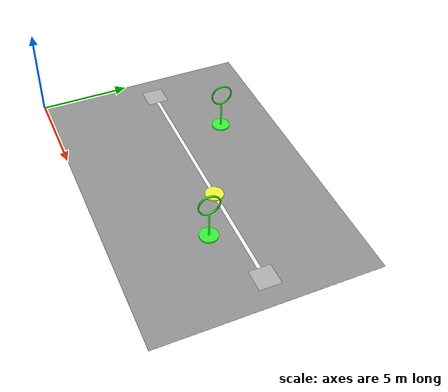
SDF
<sdf version="1.7">
  <world name="drone_delivery_field">

    <!-- Add sunlight to the world -->
    <include>
      <uri>model://sun</uri>
    </include>

    <!-- Main green field (18m x 12m) -->
    <model name="main_field">
      <static>true</static>
      <pose>9 6 0.005 0 0 0</pose>
      <link name="link">
        <collision name="collision">
          <geometry><box><size>18 12 0.01</size></box></geometry>
        </collision>
        <visual name="visual">
          <geometry><box><size>18 12 0.01</size></box></geometry>
          <material>
            <script>
              <uri>file://media/materials/scripts/gazebo.material</uri>
              <name>Gazebo/Gray</name>
            </script>
          </material>
        </visual>
      </link>
    </model>

    <!-- Central white path line (horizontal) -->
    <model name="central_line">
      <static>true</static>
      <!-- Positioned midway -->
      <pose>9 6.4 0.01 0 0 0</pose>
      <link name="link">
        <collision name="collision">
          <!-- Box dimensions: length (X), width (Y), height (Z) -->
          <geometry><box><size>14.5 0.2 0.02</size></box></geometry>
        </collision>
        <visual name="visual">
          <!-- Box dimensions: length (X), width (Y), height (Z) -->
          <geometry><box><size>14.5 0.2 0.02</size></box></geometry>
          <material>
            <!-- White line -->
            <ambient>1 1 1 1</ambient>
            <diffuse>1 1 1 1</diffuse>
          </material>
        </visual>
      </link>
    </model>

    <!-- Home landing pads (aligned along X axis) -->
    <include>
      <uri>model://home_marker</uri>
      <name>home_left</name>
      <pose>1.6 6.4 0.05 0 0 -1.57079633</pose>
    </include>

    <include>
      <uri>model://home_marker</uri>
      <name>home_right</name>
      <pose>16.4 6.4 0.05 0 0 -1.57079633</pose>
    </include>

    <!-- Center target (T2) -->
    <model name="target_T2">
      <static>true</static>
      <pose>10.5 6.4 0.05 0 0 0</pose>
      <link name="link">
        <visual name="visual">
          <geometry>
            <cylinder>
              <radius>0.5</radius>
              <length>0.1</length>
            </cylinder>
          </geometry>
          <material>
            <ambient>0.98 1.0 0.22 1</ambient>
            <diffuse>0.98 1.0 0.22 1</diffuse>
          </material>
        </visual>
      </link>
    </model>

    <!-- Right ring (R1) -->
    <include>
      <uri>model://ring_1_5</uri>
      <name>ring_R1</name>
      <pose>5.0 8.4 0 1.57079633 0 1.5708</pose>
    </include>

    <!-- Left ring (R3) -->
    <include>
      <uri>model://ring_1_5</uri>
      <name>ring_R3</name>
      <pose>12.5 4.4 0 1.57079633 0 1.5708</pose>
    </include>

    <!-- Enable ROS 2 integration -->
    <plugin name="gazebo_ros" filename="libgazebo_ros_init.so">
      <ros>
        <namespace>/gazebo</namespace>
      </ros>
    </plugin>

    <!-- Enable Gazebo factory plugin for model spawning -->
    <plugin name="factory" filename="libgazebo_ros_factory.so"/>

  </world>
</sdf>

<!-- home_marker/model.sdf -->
<sdf version="1.6">
  <model name="home_marker">
    <static>true</static>
    <link name="link">
      <pose>0 0 0 0 0 0</pose>
      <collision name="collision">
        <geometry>
          <plane>
            <normal>0 0 1</normal>
            <size>1.2 1.2</size>
          </plane>
        </geometry>
      </collision>
      <visual name="visual">
        <geometry>
          <plane>
            <normal>0 0 1</normal>
            <size>1.2 1.2</size>
          </plane>
        </geometry>
        <material>
          <script>
            <uri>model://home_marker/materials/scripts</uri>
            <uri>model://home_marker/materials/textures</uri>
            <name>home_marker/material</name>
          </script>
        </material>
      </visual>
    </link>
  </model>
</sdf>

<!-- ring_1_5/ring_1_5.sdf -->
<sdf version="1.6">
  <model name="ring_1_5">
    <static>true</static>
    <link name="ring_link">

      <!-- Visible ring mesh -->
      <visual name="visual">
        <pose>0 0 0 0 0 0</pose>
        <geometry>
          <mesh>
            <uri>model://ring_1_5/meshes/ring_1_5.STL</uri>
            <scale>0.001 0.001 0.001</scale>
          </mesh>
        </geometry>
        <material>
          <ambient>0.2 0.8 0.2 1</ambient>
          <diffuse>0.2 1.0 0.2 1</diffuse>
        </material>
      </visual>

      <!-- Virtual collision zone (small cylinder in center, no physics) -->
      <collision name="collision">
        <pose>0 0 0 0 0 0</pose>
        <geometry>
          <cylinder>
            <radius>0.1</radius>     <!-- 20 cm wide -->
            <length>0.05</length>    <!-- 5 cm thick -->
          </cylinder>
        </geometry>
        <surface>
          <contact>
            <collide_bitmask>0</collide_bitmask> <!-- Disable physical collision -->
          </contact>
          <bounce>
            <restitution_coefficient>0.0</restitution_coefficient>
          </bounce>
          <friction>
            <ode>
              <mu>0.0</mu>
              <mu2>0.0</mu2>
            </ode>
          </friction>
        </surface>
      </collision>

      <!-- Contact sensor to detect when drone enters the virtual zone -->
      <sensor name="ring_contact_sensor" type="contact">
        <always_on>true</always_on>
        <update_rate>50</update_rate>
        <contact>
          <collision>collision</collision>
        </contact>
        <plugin name="gazebo_ros_contact" filename="libgazebo_ros_contact.so">
          <ros_topic>/ring_1_5/contact</ros_topic>
        </plugin>
      </sensor>

    </link>
  </model>
</sdf>
